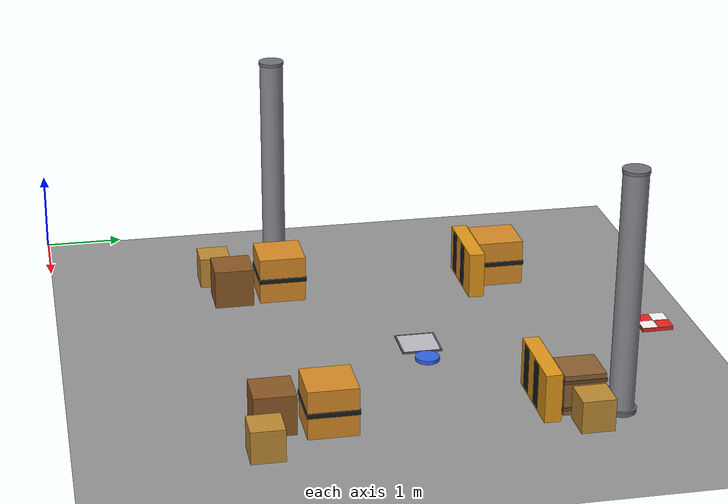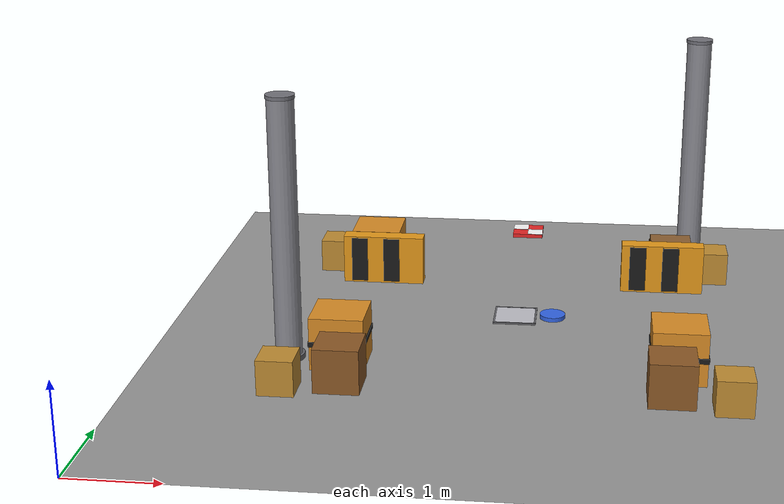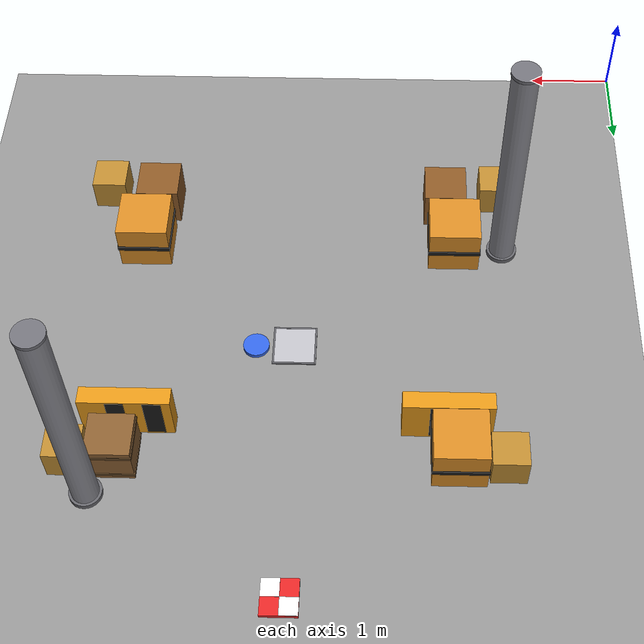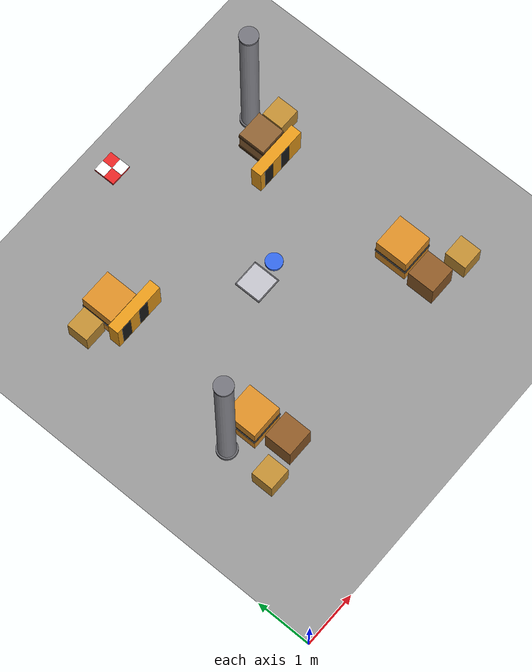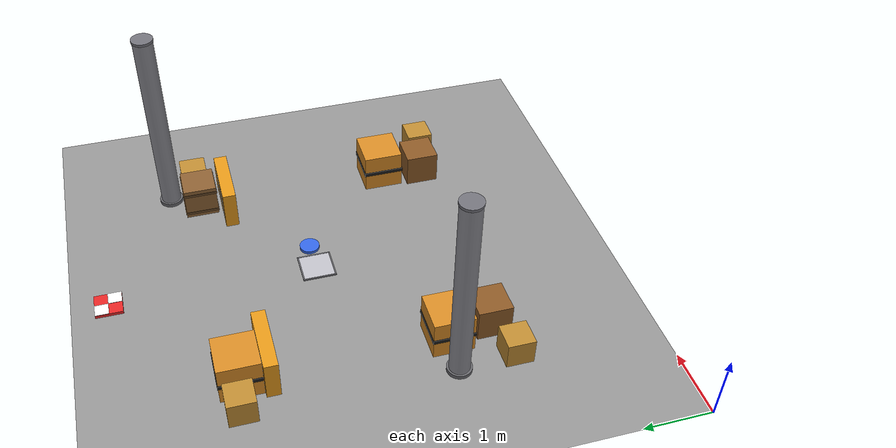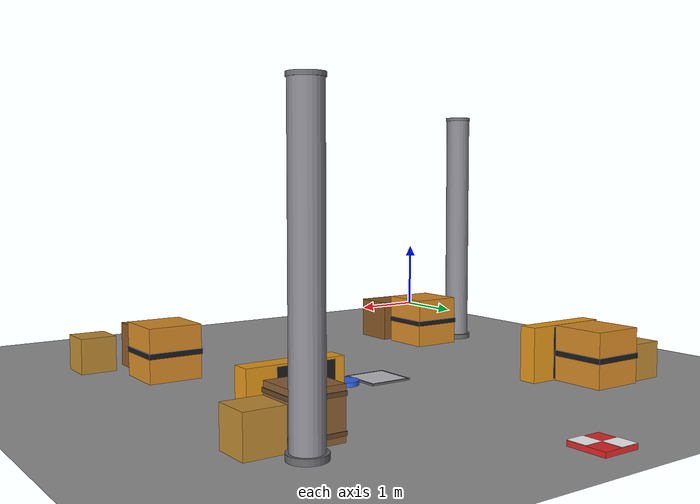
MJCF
<mujoco model="drift_world">
  <compiler assetdir="assets" angle="degree"/>

  <visual>
    <headlight ambient="0.3 0.3 0.3" diffuse="0.2 0.2 0.2" specular="0.05 0.05 0.05"/>
  </visual>

  <asset>
    <texture type="skybox" colorspace="auto" builtin="gradient" rgb1="0.56 0.65 0.75" rgb2="0.88 0.92 0.96" width="256" height="1536"/>
    <texture type="2d" colorspace="auto" name="tex_ground" builtin="checker" mark="edge" rgb1="0.55 0.55 0.55" rgb2="0.62 0.62 0.62" markrgb="0.5 0.5 0.5" width="256" height="256"/>
    <material name="mat_ground" texture="tex_ground" texrepeat="4 4" reflectance="0.05"/>
    <material name="mat_wall" rgba="0.91 0.9 0.87 1"/>
    <material name="mat_fence" rgba="0.85 0.72 0.1 0.55"/>
  </asset>

  <worldbody>
    <geom name="floor" size="4 4 0.05" pos="4 4 0" type="plane" material="mat_ground"/>
    <light name="key" pos="4 4 4.8" dir="0.250627 0.350878 -0.902258" type="directional" diffuse="0.75 0.75 0.75" specular="0.1 0.1 0.1"/>
    <body name="nav_floor_grid_tile" pos="4 4.4 0">
      <geom name="nav_floor_grid_tile_fill" size="0.24 0.24 0.01" pos="0 0 0.01" type="box" rgba="0.75 0.75 0.78 1" contype="0" conaffinity="0"/>
      <geom name="nav_floor_grid_tile_edge_n" size="0.2495 0.01 0.0102" pos="0 0.24 0.0112" type="box" rgba="0.4 0.4 0.42 1" contype="0" conaffinity="0"/>
      <geom name="nav_floor_grid_tile_edge_s" size="0.2495 0.01 0.0102" pos="0 -0.24 0.0112" type="box" rgba="0.4 0.4 0.42 1" contype="0" conaffinity="0"/>
      <geom name="nav_floor_grid_tile_edge_e" size="0.01 0.2495 0.0102" pos="0.24 0 0.0112" type="box" rgba="0.4 0.4 0.42 1" contype="0" conaffinity="0"/>
      <geom name="nav_floor_grid_tile_edge_w" size="0.01 0.2495 0.0107" pos="-0.24 0 0.0112" type="box" rgba="0.4 0.4 0.42 1" contype="0" conaffinity="0"/>
    </body>
    <body name="nav_goal_marker" pos="4 7.46 0">
      <geom name="nav_goal_marker_base" size="0.2 0.2 0.025" pos="0 0 0.025" type="box" rgba="0.9 0.15 0.15 1" contype="0" conaffinity="0"/>
      <geom name="nav_goal_marker_check1" size="0.1 0.1 0.0027" pos="-0.1 0.1 0.0532" type="box" rgba="1 1 1 1" contype="0" conaffinity="0"/>
      <geom name="nav_goal_marker_check2" size="0.1 0.1 0.0027" pos="0.1 -0.1 0.0532" type="box" rgba="1 1 1 1" contype="0" conaffinity="0"/>
    </body>
    <body name="nav_path_waypoint_marker" pos="4.44 4.415 0">
      <geom name="nav_path_waypoint_marker_base" size="0.15 0.025" pos="0 0 0.025" type="cylinder" rgba="0.2 0.4 0.9 1" contype="0" conaffinity="0"/>
    </body>
    <body name="nav_box_obstacle_small_1" pos="1.625 2.1336 0">
      <geom name="nav_box_obstacle_small_1_body" size="0.2 0.2 0.2" pos="0 0 0.2" type="box" rgba="0.75 0.55 0.2 1"/>
    </body>
    <body name="nav_box_obstacle_small_2" pos="6.375 2.1336 0">
      <geom name="nav_box_obstacle_small_2_body" size="0.2 0.2 0.2" pos="0 0 0.2" type="box" rgba="0.75 0.55 0.2 1"/>
    </body>
    <body name="nav_box_obstacle_small_3" pos="1.625 5.911 0">
      <geom name="nav_box_obstacle_small_3_body" size="0.2 0.2 0.2" pos="0 0 0.2" type="box" rgba="0.75 0.55 0.2 1"/>
    </body>
    <body name="nav_box_obstacle_small_4" pos="6.375 5.911 0">
      <geom name="nav_box_obstacle_small_4_body" size="0.2 0.2 0.2" pos="0 0 0.2" type="box" rgba="0.75 0.55 0.2 1"/>
    </body>
    <body name="nav_box_obstacle_medium_1" pos="2.155 2.9392 0">
      <geom name="nav_box_obstacle_medium_1_body" size="0.3 0.3 0.3" pos="0 0 0.3" type="box" rgba="0.85 0.55 0.15 1"/>
      <geom name="nav_box_obstacle_medium_1_band" size="0.31 0.31 0.03" pos="0 0 0.3" type="box" rgba="0.1 0.1 0.1 1"/>
    </body>
    <body name="nav_box_obstacle_medium_2" pos="5.845 2.9392 0">
      <geom name="nav_box_obstacle_medium_2_body" size="0.3 0.3 0.3" pos="0 0 0.3" type="box" rgba="0.85 0.55 0.15 1"/>
      <geom name="nav_box_obstacle_medium_2_band" size="0.31 0.31 0.03" pos="0 0 0.3" type="box" rgba="0.1 0.1 0.1 1"/>
    </body>
    <body name="nav_box_obstacle_medium_3" pos="2.155 5.8608 0">
      <geom name="nav_box_obstacle_medium_3_body" size="0.3 0.3 0.3" pos="0 0 0.3" type="box" rgba="0.85 0.55 0.15 1"/>
      <geom name="nav_box_obstacle_medium_3_band" size="0.31 0.31 0.03" pos="0 0 0.3" type="box" rgba="0.1 0.1 0.1 1"/>
    </body>
    <body name="nav_crate_obstacle_1" pos="5.87 5.883 0">
      <geom name="nav_crate_obstacle_1_body" size="0.25 0.25 0.25" pos="0 0 0.25" type="box" rgba="0.55 0.38 0.2 1"/>
      <geom name="nav_crate_obstacle_1_slat1" size="0.26 0.26 0.02" pos="0 0 0.42" type="box" rgba="0.4 0.28 0.15 1"/>
      <geom name="nav_crate_obstacle_1_slat2" size="0.26 0.26 0.02" pos="0 0 0.08" type="box" rgba="0.4 0.28 0.15 1"/>
    </body>
    <body name="nav_crate_obstacle_2" pos="2.25 2.3 0">
      <geom name="nav_crate_obstacle_2_body" size="0.25 0.25 0.25" pos="0 0 0.25" type="box" rgba="0.55 0.35 0.15 1"/>
      <geom name="nav_crate_obstacle_2_lid" size="0.2495 0.2495 0.0198" pos="0 0 0.4798" type="box" rgba="0.45 0.28 0.12 1"/>
      <geom name="nav_crate_obstacle_2_slat_h" size="0.2495 0.02 0.02" pos="0 0 0.25" type="box" rgba="0.4 0.24 0.1 1"/>
    </body>
    <body name="nav_crate_obstacle_3" pos="5.75 2.3 0">
      <geom name="nav_crate_obstacle_3_body" size="0.25 0.25 0.25" pos="0 0 0.25" type="box" rgba="0.55 0.35 0.15 1"/>
      <geom name="nav_crate_obstacle_3_lid" size="0.2495 0.2495 0.0198" pos="0 0 0.4798" type="box" rgba="0.45 0.28 0.12 1"/>
      <geom name="nav_crate_obstacle_3_slat_h" size="0.2495 0.02 0.02" pos="0 0 0.25" type="box" rgba="0.4 0.24 0.1 1"/>
    </body>
    <body name="nav_wall_barrier_short_1" pos="2.2776 5.4561 0">
      <geom name="nav_wall_barrier_short_1_panel" size="0.5 0.1 0.3" pos="0 0 0.3" type="box" rgba="0.9 0.6 0.1 1"/>
      <geom name="nav_wall_barrier_short_1_stripe1" size="0.1 0.101 0.28" pos="-0.3 0 0.3" type="box" rgba="0.1 0.1 0.1 1"/>
      <geom name="nav_wall_barrier_short_1_stripe2" size="0.1 0.101 0.28" pos="0.1 0 0.3" type="box" rgba="0.1 0.1 0.1 1"/>
    </body>
    <body name="nav_wall_barrier_short_2" pos="5.75 5.4693 0">
      <geom name="nav_wall_barrier_short_2_panel" size="0.5 0.1 0.3" pos="0 0 0.3" type="box" rgba="0.9 0.6 0.1 1"/>
      <geom name="nav_wall_barrier_short_2_stripe1" size="0.1 0.101 0.28" pos="-0.3 0 0.3" type="box" rgba="0.1 0.1 0.1 1"/>
      <geom name="nav_wall_barrier_short_2_stripe2" size="0.1 0.101 0.28" pos="0.1 0 0.3" type="box" rgba="0.1 0.1 0.1 1"/>
    </body>
    <body name="nav_cylindrical_pillar_1" pos="1.566 2.96 0">
      <geom name="nav_cylindrical_pillar_1_shaft" size="0.15 1.4995" pos="0 0 1.5" type="cylinder" rgba="0.55 0.55 0.58 1"/>
      <geom name="nav_cylindrical_pillar_1_base" size="0.18 0.03" pos="0 0 0.03" type="cylinder" rgba="0.4 0.4 0.42 1"/>
      <geom name="nav_cylindrical_pillar_1_cap" size="0.16 0.02" pos="0 0 2.98" type="cylinder" rgba="0.45 0.45 0.48 1"/>
    </body>
    <body name="nav_cylindrical_pillar_2" pos="6.12 6.326 0">
      <geom name="nav_cylindrical_pillar_2_shaft" size="0.15 1.4995" pos="0 0 1.5" type="cylinder" rgba="0.55 0.55 0.58 1"/>
      <geom name="nav_cylindrical_pillar_2_base" size="0.18 0.03" pos="0 0 0.03" type="cylinder" rgba="0.4 0.4 0.42 1"/>
      <geom name="nav_cylindrical_pillar_2_cap" size="0.16 0.02" pos="0 0 2.98" type="cylinder" rgba="0.45 0.45 0.48 1"/>
    </body>
  </worldbody>
</mujoco>
